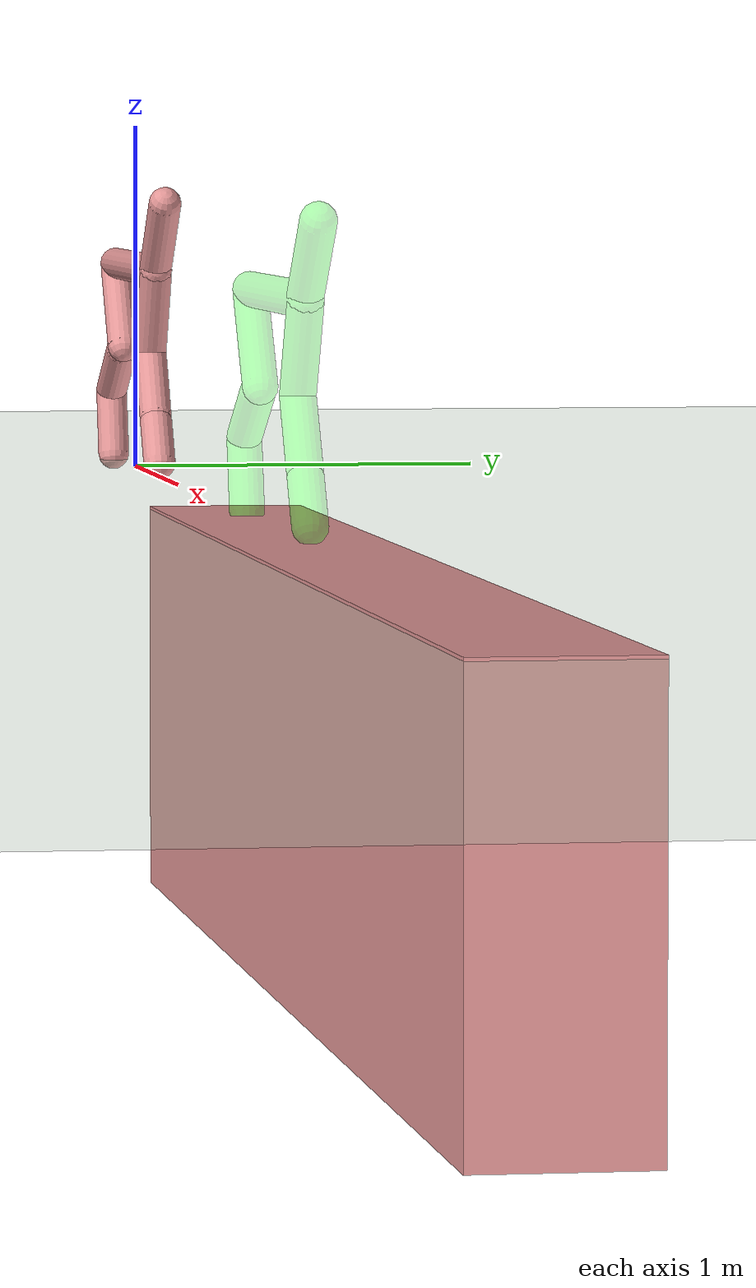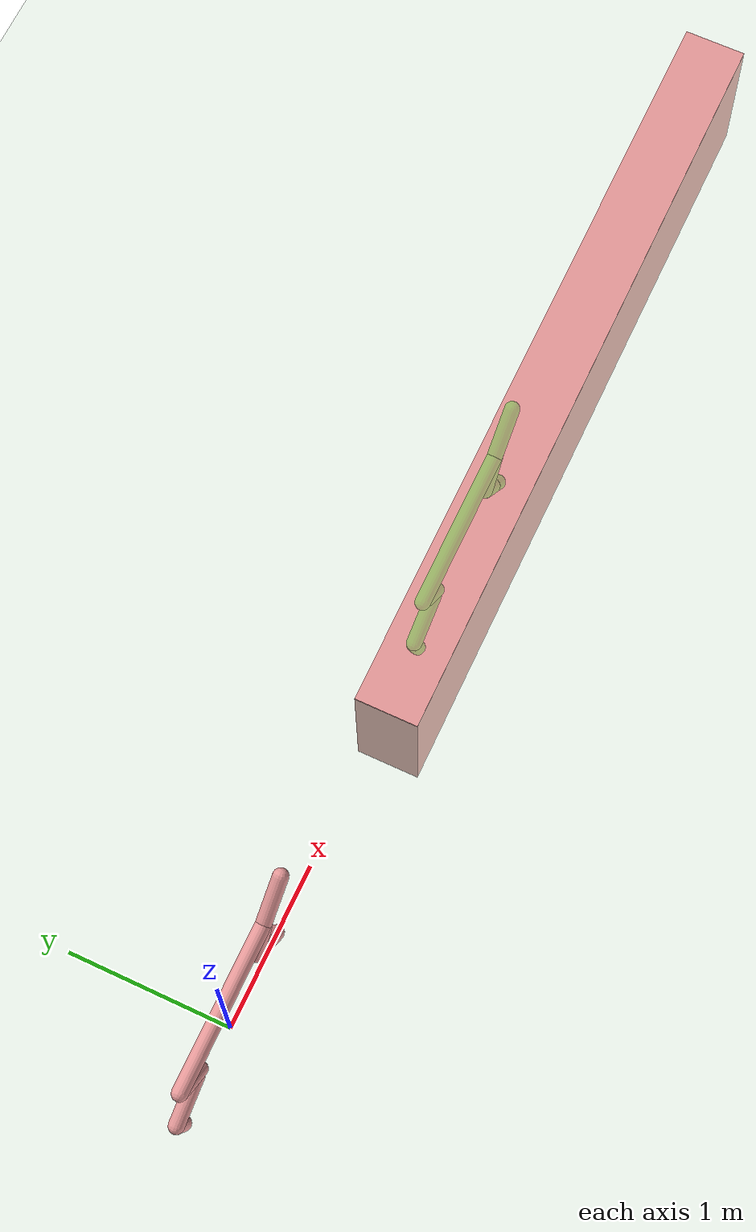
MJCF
<?xml version="1.0" ?>
<mujoco model="cheetah">
  <compiler angle="radian"/>
  <option timestep="0.01">
    <!-- Disable if your dynamics computations are random states. Enable if your dynamics computations will form a full trajectory-->
    <flag warmstart="disable"/>
  </option>
  <size nconmax="100" njmax="500" nkey="1" nstack="300000" nuser_geom="1"/>
  <default class="main">
    <joint armature="0.1" damping="0.01" limited="true" solimplimit="0 0.8 0.03 0.5 2" stiffness="8"/>
    <geom conaffinity="0" contype="1" friction="0.4 0.1 0.1" rgba="0.9 0.6 0.6 1" solimp="0 0.8 0.01 0.5 2"/>
    <general ctrllimited="true" ctrlrange="-1 1"/>
  </default>
  <default class="ground"> <!-- Cannot seem to use this class-->
      <geom conaffinity="3" contype="0" />
  </default>
  <default class="overlay">
      <geom conaffinity="0" contype="2" rgba="1 0.3 1 0.5"/>
      <general ctrllimited="true" ctrlrange="-1 1"/>
      <joint armature="0.1" />
  </default>

  <asset>
    <texture builtin="gradient" height="600" rgb1="1 1 1" rgb2="0 0 0" type="skybox" width="100"/>
    <texture builtin="flat" height="762" mark="cross" markrgb="1 1 1" name="texgeom" rgb1="0.8 0.6 0.4" rgb2="0.8 0.6 0.4" type="cube" width="127"/>
    <texture type="2d" name="texplane" builtin="checker" rgb1="1 1 1" rgb2="0.5 0.5 0.5" width="100" height="100"/>
    <material name="MatPlane" shininess="1" specular="1" texrepeat="40 40" texture="texplane"/>
    <material name="geom" texture="texgeom" texuniform="true"/>
  </asset>
  <worldbody>
    <geom conaffinity="3" material="MatPlane" name="floor" rgba="0.8 0.9 0.8 1" size="40 40 40" type="plane"/>
    <light cutoff="100" diffuse="1 1 1" dir="0 0 -1" directional="true" exponent="1" pos="0 0 1.3" specular="0.1 0.1 0.1"/>
    <!-- MAIN HALF CHEETAH -->
    <body name="torso" pos="0 0 0.587">
      <joint armature="0" axis="1 0 0" damping="0" limited="false" name="rootx" pos="0 0 0" stiffness="0" type="slide"/>
      <joint armature="0" axis="0 0 1" damping="0" limited="false" name="rootz" pos="0 0 0" stiffness="0" type="slide"/>
      <joint armature="0" axis="0 1 0" damping="0" limited="false" name="rooty" pos="0 0 0" stiffness="0"/>
      <geom name="torso" quat="0.707107 0 -0.707107 0" size="0.046 0.5" rgba="0.9 0.6 0.6 1" type="capsule"/>
      <geom name="head" pos="0.6 0 0.1" quat="0.90687 0 0.42141 0" size="0.046 0.15" rgba="0.9 0.6 0.6 1" type="capsule"/>
      <camera mode="trackcom" name="track" pos="0 -3 0.3" quat="0.707107 0.707107 0 0"/>
      <body name="bthigh" pos="-0.5 0 0">
        <joint axis="0 1 0" damping="6" name="bthigh" pos="0 0 0" range="-0.52 1.05" stiffness="240"/>
        <geom name="bthigh" pos="0.1 0 -0.13" quat="-0.32329 0 -0.9463 0" size="0.046 0.145" rgba="0.9 0.6 0.6 1" type="capsule"/>
        <body name="bshin" pos="0.16 0 -0.25">
          <joint axis="0 1 0" damping="4.5" name="bshin" pos="0 0 0" range="-0.785 0.785" stiffness="180"/>
          <geom name="bshin" pos="-0.14 0 -0.07" quat="0.52762 0 -0.849481 0" rgba="0.9 0.6 0.6 1" size="0.046 0.15" type="capsule"/>
          <body name="bfoot" pos="-0.28 0 -0.14">
            <joint axis="0 1 0" damping="3" name="bfoot" pos="0 0 0" range="-0.4 0.785" stiffness="120"/>
            <geom name="bfoot" pos="0.03 0 -0.097" quat="0.990901 0 -0.13459 0" rgba="0.9 0.6 0.6 1" size="0.046 0.094" type="capsule"/>
          </body>
        </body>
      </body>
      <body name="fthigh" pos="0.5 0 0">
        <joint axis="0 1 0" damping="4.5" name="fthigh" pos="0 0 0" range="-1 0.7" stiffness="180"/>
        <geom name="fthigh" pos="-0.07 0 -0.12" quat="0.96639 0 0.257081 0" size="0.046 0.133" rgba="0.9 0.6 0.6 1" type="capsule"/>
        <body name="fshin" pos="-0.14 0 -0.24">
          <joint axis="0 1 0" damping="3" name="fshin" pos="0 0 0" range="-1.2 0.87" stiffness="120"/>
          <geom name="fshin" pos="0.065 0 -0.09" quat="0.955337 0 -0.29552 0" rgba="0.9 0.6 0.6 1" size="0.046 0.106" type="capsule"/>
          <body name="ffoot" pos="0.13 0 -0.18">
            <joint axis="0 1 0" damping="1.5" name="ffoot" pos="0 0 0" range="-0.5 0.5" stiffness="60"/>
            <geom name="ffoot" pos="0.045 0 -0.07" quat="0.955337 0 -0.29552 0" rgba="0.9 0.6 0.6 1" size="0.046 0.07" type="capsule"/>
          </body>
        </body>
      </body>
    </body>
    <!-- OVERLAY HALF CHEETAH -->
    <body name="otorso" pos="0 0 0.587">
      <joint armature="0" axis="1 0 0" damping="0" limited="false" name="orootx" pos="0 0 0" stiffness="0" type="slide"/>
      <joint armature="0" axis="0 0 1" damping="0" limited="false" name="orootz" pos="0 0 0" stiffness="0" type="slide"/>
      <joint armature="0" axis="0 1 0" damping="0" limited="false" name="orooty" pos="0 0 0" stiffness="0"/>
      <geom name="otorso_geom" class="overlay" quat="0.707107 0 -0.707107 0" size="0.046 0.5" type="capsule"/>
      <geom name="ohead_geom" class="overlay" pos="0.6 0 0.1" quat="0.90687 0 0.42141 0" size="0.046 0.15" type="capsule"/>
      <camera mode="trackcom" name="otrack" pos="0 -3 0.3" quat="0.707107 0.707107 0 0"/>
      <body name="obthigh" pos="-0.5 0 0">
        <joint axis="0 1 0" damping="6" name="obthigh" pos="0 0 0" range="-0.52 1.05" stiffness="240"/>
        <geom name="obthigh_geom" class="overlay" pos="0.1 0 -0.13" quat="-0.32329 0 -0.9463 0" size="0.046 0.145" type="capsule"/>
        <body name="obshin" pos="0.16 0 -0.25">
          <joint axis="0 1 0" damping="4.5" name="obshin" pos="0 0 0" range="-0.785 0.785" stiffness="180"/>
          <geom name="obshin_geom" class="overlay" pos="-0.14 0 -0.07" quat="0.52762 0 -0.849481 0" size="0.046 0.15" type="capsule"/>
          <body name="obfoot" pos="-0.28 0 -0.14">
            <joint axis="0 1 0" damping="3" name="obfoot" pos="0 0 0" range="-0.4 0.785" stiffness="120"/>
            <geom name="obfoot_geom" class="overlay" pos="0.03 0 -0.097" quat="0.990901 0 -0.13459 0" size="0.046 0.094" type="capsule"/>
          </body>
        </body>
      </body>
      <body name="ofthigh" pos="0.5 0 0">
        <joint axis="0 1 0" damping="4.5" name="ofthigh" pos="0 0 0" range="-1 0.7" stiffness="180"/>
        <geom name="ofthigh_geom" class="overlay" pos="-0.07 0 -0.12" quat="0.96639 0 0.257081 0" size="0.046 0.133" type="capsule"/>
        <body name="ofshin" pos="-0.14 0 -0.24">
          <joint axis="0 1 0" damping="3" name="ofshin" pos="0 0 0" range="-1.2 0.87" stiffness="120"/>
          <geom name="ofshin_geom" class="overlay" pos="0.065 0 -0.09" quat="0.955337 0 -0.29552 0" size="0.046 0.106" type="capsule"/>
          <body name="offoot" pos="0.13 0 -0.18">
            <joint axis="0 1 0" damping="1.5" name="offoot" pos="0 0 0" range="-0.5 0.5" stiffness="60"/>
            <geom name="offoot_geom" class="overlay" pos="0.045 0 -0.07" quat="0.955337 0 -0.29552 0" size="0.046 0.07" type="capsule"/>
          </body>
        </body>
      </body>
    </body>
    <!-- Target. All names prefixed with g for goal -->
    <body name="gtorso" pos="3 0 0.587">
      <geom contype="0" name="gtorso" quat="0.707107 0 -0.707107 0" rgba="0 1 0 0.3" size="0.046 0.5" type="capsule"/>
      <geom contype="0" name="ghead" pos="0.6 0 0.1" quat="0.90687 0 0.42141 0" rgba="0 1 0 0.3" size="0.046 0.15" type="capsule"/>
      <body name="gbthigh" pos="-0.5 0 0">
        <geom contype="0" name="gbthigh" pos="0.1 0 -0.13" quat="-0.32329 0 -0.9463 0" rgba="0 1 0 0.3" size="0.046 0.145" type="capsule"/>
        <body name="gbshin" pos="0.16 0 -0.25">
          <geom contype="0" name="gbshin" pos="-0.14 0 -0.07" quat="0.52762 0 -0.849481 0" rgba="0 1 0 0.3" size="0.046 0.15" type="capsule"/>
          <body name="gbfoot" pos="-0.28 0 -0.14">
            <geom contype="0" name="gbfoot" pos="0.03 0 -0.097" quat="0.990901 0 -0.13459 0" rgba="0 1 0 0.3" size="0.046 0.094" type="capsule"/>
          </body>
        </body>
      </body>
      <body name="gfthigh" pos="0.5 0 0">
        <geom contype="0" name="gfthigh" pos="-0.07 0 -0.12" quat="0.96639 0 0.257081 0" rgba="0 1 0 0.3" size="0.046 0.133" type="capsule"/>
        <body name="gfshin" pos="-0.14 0 -0.24">
          <geom contype="0" name="gfshin" pos="0.065 0 -0.09" quat="0.955337 0 -0.29552 0" rgba="0 1 0 0.3" size="0.046 0.106" type="capsule"/>
          <body name="gffoot" pos="0.13 0 -0.18">
            <geom contype="0" name="gffoot" pos="0.045 0 -0.07" quat="0.955337 0 -0.29552 0" rgba="0 1 0 0.3" size="0.046 0.07" type="capsule"/>
          </body>
        </body>
      </body>
    </body>
    <body name="step0" pos="4.5 0 0">
      <geom name="step0_geom" conaffinity="3" pos="0 0 -0.5" size="2.5 0.2 0.5" rgba="0.9 0.6 0.6 1" type="box"/>
    </body>
  </worldbody>
  <actuator>
    <general gear="120 0 0 0 0 0" joint="bthigh" name="bthigh"/>
    <general gear="90 0 0 0 0 0" joint="bshin" name="bshin"/>
    <general gear="60 0 0 0 0 0" joint="bfoot" name="bfoot"/>
    <general gear="120 0 0 0 0 0" joint="fthigh" name="fthigh"/>
    <general gear="60 0 0 0 0 0" joint="fshin" name="fshin"/>
    <general gear="30 0 0 0 0 0" joint="ffoot" name="ffoot"/>
    <general gear="120 0 0 0 0 0" joint="obthigh" name="obthigh"/>
    <general gear="90 0 0 0 0 0" joint="obshin" name="obshin"/>
    <general gear="60 0 0 0 0 0" joint="obfoot" name="obfoot"/>
    <general gear="120 0 0 0 0 0" joint="ofthigh" name="ofthigh"/>
    <general gear="60 0 0 0 0 0" joint="ofshin" name="ofshin"/>
    <general gear="30 0 0 0 0 0" joint="offoot" name="offoot"/>
  </actuator>
</mujoco>
